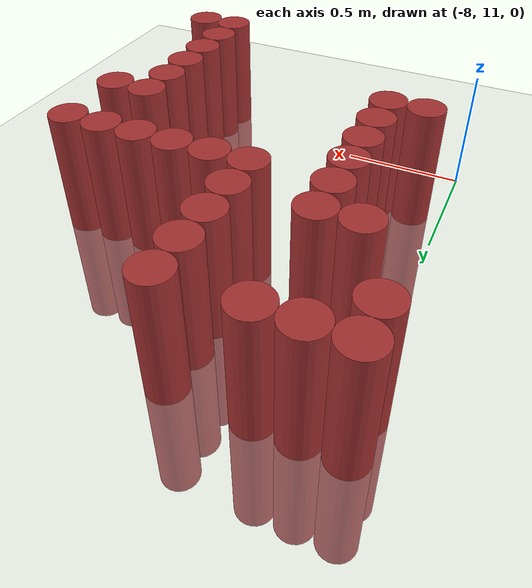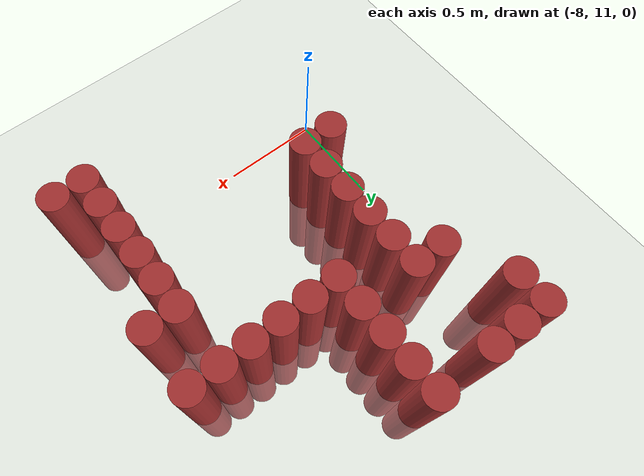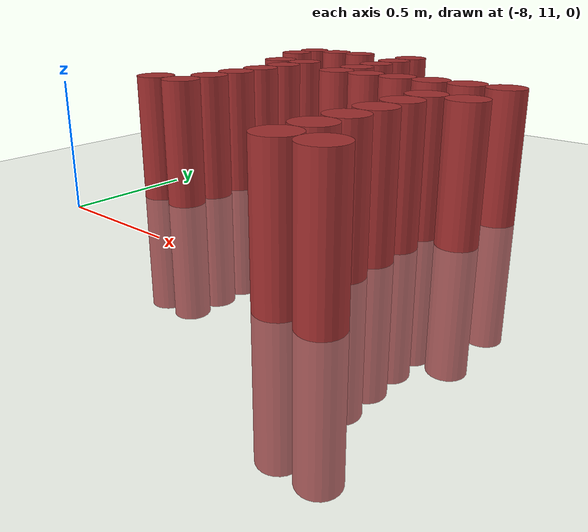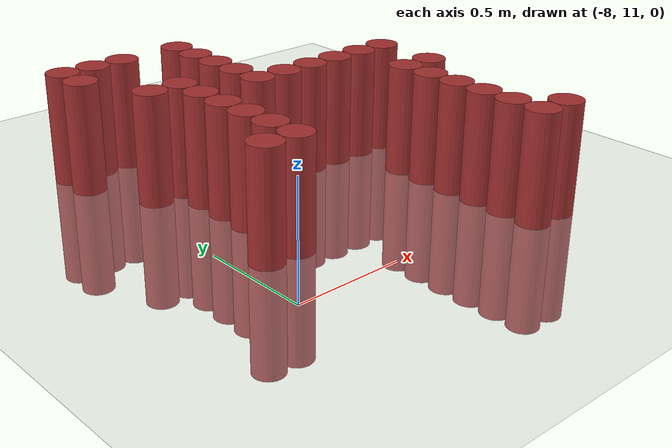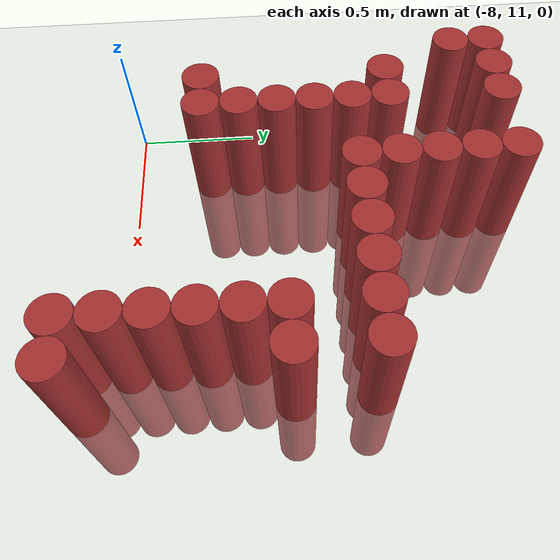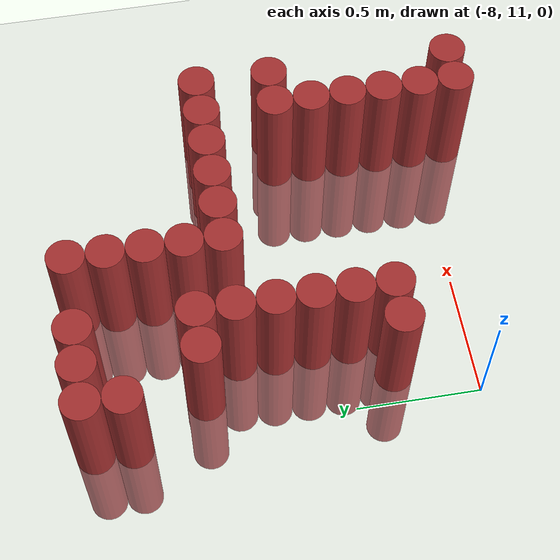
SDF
<sdf version="1.6">
 <world name="default">
  <model name="ground_plane">
   <static>1</static>
   <link name="link">
    <collision name="collision">
     <geometry><plane><normal>0 0 1</normal><size>100 100</size></plane></geometry>
     <surface><friction><ode><mu>100</mu><mu2>50</mu2></ode></friction></surface>
    </collision>
    <visual name="visual">
     <cast_shadows>0</cast_shadows>
     <geometry><plane><normal>0 0 1</normal><size>100 100</size></plane></geometry>
     <material>
      <script><uri>file://media/materials/scripts/gazebo.material</uri><name>Gazebo/Grey</name></script>
     </material>
    </visual>
   </link>
  </model>
  <model name="unit_cylinder_647">
   <static>1</static>
   <pose>-8.025 12.375 0 0 -0 0</pose>
   <link name="link">
    <inertial>
     <mass>1</mass>
     <inertia><ixx>0.145833</ixx><ixy>0</ixy><ixz>0</ixz><iyy>0.145833</iyy><iyz>0</iyz><izz>0.125</izz></inertia>
    </inertial>
    <collision name="collision">
     <geometry><cylinder><radius>0.075</radius><length>1</length></cylinder></geometry>
    </collision>
    <visual name="visual">
     <geometry><cylinder><radius>0.075</radius><length>1</length></cylinder></geometry>
     <material><ambient>0.648 0.192 0.192 1</ambient><diffuse>0.648 0.192 0.192 1</diffuse></material>
     <material>
      <script><name>Gazebo/Grey</name><uri>file://media/materials/scripts/gazebo.material</uri></script>
     </material>
    </visual>
   </link>
  </model>
  <model name="unit_cylinder_648">
   <static>1</static>
   <pose>-8.025 12.525 0 0 -0 0</pose>
   <link name="link">
    <inertial>
     <mass>1</mass>
     <inertia><ixx>0.145833</ixx><ixy>0</ixy><ixz>0</ixz><iyy>0.145833</iyy><iyz>0</iyz><izz>0.125</izz></inertia>
    </inertial>
    <collision name="collision">
     <geometry><cylinder><radius>0.075</radius><length>1</length></cylinder></geometry>
    </collision>
    <visual name="visual">
     <geometry><cylinder><radius>0.075</radius><length>1</length></cylinder></geometry>
     <material><ambient>0.648 0.192 0.192 1</ambient><diffuse>0.648 0.192 0.192 1</diffuse></material>
     <material>
      <script><name>Gazebo/Grey</name><uri>file://media/materials/scripts/gazebo.material</uri></script>
     </material>
    </visual>
   </link>
  </model>
  <model name="unit_cylinder_657">
   <static>1</static>
   <pose>-7.875 11.325 0 0 -0 0</pose>
   <link name="link">
    <inertial>
     <mass>1</mass>
     <inertia><ixx>0.145833</ixx><ixy>0</ixy><ixz>0</ixz><iyy>0.145833</iyy><iyz>0</iyz><izz>0.125</izz></inertia>
    </inertial>
    <collision name="collision">
     <geometry><cylinder><radius>0.075</radius><length>1</length></cylinder></geometry>
    </collision>
    <visual name="visual">
     <geometry><cylinder><radius>0.075</radius><length>1</length></cylinder></geometry>
     <material><ambient>0.648 0.192 0.192 1</ambient><diffuse>0.648 0.192 0.192 1</diffuse></material>
     <material>
      <script><name>Gazebo/Grey</name><uri>file://media/materials/scripts/gazebo.material</uri></script>
     </material>
    </visual>
   </link>
  </model>
  <model name="unit_cylinder_658">
   <static>1</static>
   <pose>-7.875 12.075 0 0 -0 0</pose>
   <link name="link">
    <inertial>
     <mass>1</mass>
     <inertia><ixx>0.145833</ixx><ixy>0</ixy><ixz>0</ixz><iyy>0.145833</iyy><iyz>0</iyz><izz>0.125</izz></inertia>
    </inertial>
    <collision name="collision">
     <geometry><cylinder><radius>0.075</radius><length>1</length></cylinder></geometry>
    </collision>
    <visual name="visual">
     <geometry><cylinder><radius>0.075</radius><length>1</length></cylinder></geometry>
     <material><ambient>0.648 0.192 0.192 1</ambient><diffuse>0.648 0.192 0.192 1</diffuse></material>
     <material>
      <script><name>Gazebo/Grey</name><uri>file://media/materials/scripts/gazebo.material</uri></script>
     </material>
    </visual>
   </link>
  </model>
  <model name="unit_cylinder_659">
   <static>1</static>
   <pose>-7.875 12.525 0 0 -0 0</pose>
   <link name="link">
    <inertial>
     <mass>1</mass>
     <inertia><ixx>0.145833</ixx><ixy>0</ixy><ixz>0</ixz><iyy>0.145833</iyy><iyz>0</iyz><izz>0.125</izz></inertia>
    </inertial>
    <collision name="collision">
     <geometry><cylinder><radius>0.075</radius><length>1</length></cylinder></geometry>
    </collision>
    <visual name="visual">
     <geometry><cylinder><radius>0.075</radius><length>1</length></cylinder></geometry>
     <material><ambient>0.648 0.192 0.192 1</ambient><diffuse>0.648 0.192 0.192 1</diffuse></material>
     <material>
      <script><name>Gazebo/Grey</name><uri>file://media/materials/scripts/gazebo.material</uri></script>
     </material>
    </visual>
   </link>
  </model>
  <model name="unit_cylinder_673">
   <static>1</static>
   <pose>-7.725 11.325 0 0 -0 0</pose>
   <link name="link">
    <inertial>
     <mass>1</mass>
     <inertia><ixx>0.145833</ixx><ixy>0</ixy><ixz>0</ixz><iyy>0.145833</iyy><iyz>0</iyz><izz>0.125</izz></inertia>
    </inertial>
    <collision name="collision">
     <geometry><cylinder><radius>0.075</radius><length>1</length></cylinder></geometry>
    </collision>
    <visual name="visual">
     <geometry><cylinder><radius>0.075</radius><length>1</length></cylinder></geometry>
     <material><ambient>0.648 0.192 0.192 1</ambient><diffuse>0.648 0.192 0.192 1</diffuse></material>
     <material>
      <script><name>Gazebo/Grey</name><uri>file://media/materials/scripts/gazebo.material</uri></script>
     </material>
    </visual>
   </link>
  </model>
  <model name="unit_cylinder_674">
   <static>1</static>
   <pose>-7.725 11.475 0 0 -0 0</pose>
   <link name="link">
    <inertial>
     <mass>1</mass>
     <inertia><ixx>0.145833</ixx><ixy>0</ixy><ixz>0</ixz><iyy>0.145833</iyy><iyz>0</iyz><izz>0.125</izz></inertia>
    </inertial>
    <collision name="collision">
     <geometry><cylinder><radius>0.075</radius><length>1</length></cylinder></geometry>
    </collision>
    <visual name="visual">
     <geometry><cylinder><radius>0.075</radius><length>1</length></cylinder></geometry>
     <material><ambient>0.648 0.192 0.192 1</ambient><diffuse>0.648 0.192 0.192 1</diffuse></material>
     <material>
      <script><name>Gazebo/Grey</name><uri>file://media/materials/scripts/gazebo.material</uri></script>
     </material>
    </visual>
   </link>
  </model>
  <model name="unit_cylinder_675">
   <static>1</static>
   <pose>-7.725 11.625 0 0 -0 0</pose>
   <link name="link">
    <inertial>
     <mass>1</mass>
     <inertia><ixx>0.145833</ixx><ixy>0</ixy><ixz>0</ixz><iyy>0.145833</iyy><iyz>0</iyz><izz>0.125</izz></inertia>
    </inertial>
    <collision name="collision">
     <geometry><cylinder><radius>0.075</radius><length>1</length></cylinder></geometry>
    </collision>
    <visual name="visual">
     <geometry><cylinder><radius>0.075</radius><length>1</length></cylinder></geometry>
     <material><ambient>0.648 0.192 0.192 1</ambient><diffuse>0.648 0.192 0.192 1</diffuse></material>
     <material>
      <script><name>Gazebo/Grey</name><uri>file://media/materials/scripts/gazebo.material</uri></script>
     </material>
    </visual>
   </link>
  </model>
  <model name="unit_cylinder_676">
   <static>1</static>
   <pose>-7.725 11.775 0 0 -0 0</pose>
   <link name="link">
    <inertial>
     <mass>1</mass>
     <inertia><ixx>0.145833</ixx><ixy>0</ixy><ixz>0</ixz><iyy>0.145833</iyy><iyz>0</iyz><izz>0.125</izz></inertia>
    </inertial>
    <collision name="collision">
     <geometry><cylinder><radius>0.075</radius><length>1</length></cylinder></geometry>
    </collision>
    <visual name="visual">
     <geometry><cylinder><radius>0.075</radius><length>1</length></cylinder></geometry>
     <material><ambient>0.648 0.192 0.192 1</ambient><diffuse>0.648 0.192 0.192 1</diffuse></material>
     <material>
      <script><name>Gazebo/Grey</name><uri>file://media/materials/scripts/gazebo.material</uri></script>
     </material>
    </visual>
   </link>
  </model>
  <model name="unit_cylinder_677">
   <static>1</static>
   <pose>-7.725 11.925 0 0 -0 0</pose>
   <link name="link">
    <inertial>
     <mass>1</mass>
     <inertia><ixx>0.145833</ixx><ixy>0</ixy><ixz>0</ixz><iyy>0.145833</iyy><iyz>0</iyz><izz>0.125</izz></inertia>
    </inertial>
    <collision name="collision">
     <geometry><cylinder><radius>0.075</radius><length>1</length></cylinder></geometry>
    </collision>
    <visual name="visual">
     <geometry><cylinder><radius>0.075</radius><length>1</length></cylinder></geometry>
     <material><ambient>0.648 0.192 0.192 1</ambient><diffuse>0.648 0.192 0.192 1</diffuse></material>
     <material>
      <script><name>Gazebo/Grey</name><uri>file://media/materials/scripts/gazebo.material</uri></script>
     </material>
    </visual>
   </link>
  </model>
  <model name="unit_cylinder_678">
   <static>1</static>
   <pose>-7.725 12.075 0 0 -0 0</pose>
   <link name="link">
    <inertial>
     <mass>1</mass>
     <inertia><ixx>0.145833</ixx><ixy>0</ixy><ixz>0</ixz><iyy>0.145833</iyy><iyz>0</iyz><izz>0.125</izz></inertia>
    </inertial>
    <collision name="collision">
     <geometry><cylinder><radius>0.075</radius><length>1</length></cylinder></geometry>
    </collision>
    <visual name="visual">
     <geometry><cylinder><radius>0.075</radius><length>1</length></cylinder></geometry>
     <material><ambient>0.648 0.192 0.192 1</ambient><diffuse>0.648 0.192 0.192 1</diffuse></material>
     <material>
      <script><name>Gazebo/Grey</name><uri>file://media/materials/scripts/gazebo.material</uri></script>
     </material>
    </visual>
   </link>
  </model>
  <model name="unit_cylinder_679">
   <static>1</static>
   <pose>-7.725 12.525 0 0 -0 0</pose>
   <link name="link">
    <inertial>
     <mass>1</mass>
     <inertia><ixx>0.145833</ixx><ixy>0</ixy><ixz>0</ixz><iyy>0.145833</iyy><iyz>0</iyz><izz>0.125</izz></inertia>
    </inertial>
    <collision name="collision">
     <geometry><cylinder><radius>0.075</radius><length>1</length></cylinder></geometry>
    </collision>
    <visual name="visual">
     <geometry><cylinder><radius>0.075</radius><length>1</length></cylinder></geometry>
     <material><ambient>0.648 0.192 0.192 1</ambient><diffuse>0.648 0.192 0.192 1</diffuse></material>
     <material>
      <script><name>Gazebo/Grey</name><uri>file://media/materials/scripts/gazebo.material</uri></script>
     </material>
    </visual>
   </link>
  </model>
  <model name="unit_cylinder_728">
   <static>1</static>
   <pose>-7.425 11.925 0 0 -0 0</pose>
   <link name="link">
    <inertial>
     <mass>1</mass>
     <inertia><ixx>0.145833</ixx><ixy>0</ixy><ixz>0</ixz><iyy>0.145833</iyy><iyz>0</iyz><izz>0.125</izz></inertia>
    </inertial>
    <collision name="collision">
     <geometry><cylinder><radius>0.075</radius><length>1</length></cylinder></geometry>
    </collision>
    <visual name="visual">
     <geometry><cylinder><radius>0.075</radius><length>1</length></cylinder></geometry>
     <material><ambient>0.648 0.192 0.192 1</ambient><diffuse>0.648 0.192 0.192 1</diffuse></material>
     <material>
      <script><name>Gazebo/Grey</name><uri>file://media/materials/scripts/gazebo.material</uri></script>
     </material>
    </visual>
   </link>
  </model>
  <model name="unit_cylinder_729">
   <static>1</static>
   <pose>-7.425 12.075 0 0 -0 0</pose>
   <link name="link">
    <inertial>
     <mass>1</mass>
     <inertia><ixx>0.145833</ixx><ixy>0</ixy><ixz>0</ixz><iyy>0.145833</iyy><iyz>0</iyz><izz>0.125</izz></inertia>
    </inertial>
    <collision name="collision">
     <geometry><cylinder><radius>0.075</radius><length>1</length></cylinder></geometry>
    </collision>
    <visual name="visual">
     <geometry><cylinder><radius>0.075</radius><length>1</length></cylinder></geometry>
     <material><ambient>0.648 0.192 0.192 1</ambient><diffuse>0.648 0.192 0.192 1</diffuse></material>
     <material>
      <script><name>Gazebo/Grey</name><uri>file://media/materials/scripts/gazebo.material</uri></script>
     </material>
    </visual>
   </link>
  </model>
  <model name="unit_cylinder_730">
   <static>1</static>
   <pose>-7.425 12.225 0 0 -0 0</pose>
   <link name="link">
    <inertial>
     <mass>1</mass>
     <inertia><ixx>0.145833</ixx><ixy>0</ixy><ixz>0</ixz><iyy>0.145833</iyy><iyz>0</iyz><izz>0.125</izz></inertia>
    </inertial>
    <collision name="collision">
     <geometry><cylinder><radius>0.075</radius><length>1</length></cylinder></geometry>
    </collision>
    <visual name="visual">
     <geometry><cylinder><radius>0.075</radius><length>1</length></cylinder></geometry>
     <material><ambient>0.648 0.192 0.192 1</ambient><diffuse>0.648 0.192 0.192 1</diffuse></material>
     <material>
      <script><name>Gazebo/Grey</name><uri>file://media/materials/scripts/gazebo.material</uri></script>
     </material>
    </visual>
   </link>
  </model>
  <model name="unit_cylinder_731">
   <static>1</static>
   <pose>-7.425 12.375 0 0 -0 0</pose>
   <link name="link">
    <inertial>
     <mass>1</mass>
     <inertia><ixx>0.145833</ixx><ixy>0</ixy><ixz>0</ixz><iyy>0.145833</iyy><iyz>0</iyz><izz>0.125</izz></inertia>
    </inertial>
    <collision name="collision">
     <geometry><cylinder><radius>0.075</radius><length>1</length></cylinder></geometry>
    </collision>
    <visual name="visual">
     <geometry><cylinder><radius>0.075</radius><length>1</length></cylinder></geometry>
     <material><ambient>0.648 0.192 0.192 1</ambient><diffuse>0.648 0.192 0.192 1</diffuse></material>
     <material>
      <script><name>Gazebo/Grey</name><uri>file://media/materials/scripts/gazebo.material</uri></script>
     </material>
    </visual>
   </link>
  </model>
  <model name="unit_cylinder_732">
   <static>1</static>
   <pose>-7.425 12.525 0 0 -0 0</pose>
   <link name="link">
    <inertial>
     <mass>1</mass>
     <inertia><ixx>0.145833</ixx><ixy>0</ixy><ixz>0</ixz><iyy>0.145833</iyy><iyz>0</iyz><izz>0.125</izz></inertia>
    </inertial>
    <collision name="collision">
     <geometry><cylinder><radius>0.075</radius><length>1</length></cylinder></geometry>
    </collision>
    <visual name="visual">
     <geometry><cylinder><radius>0.075</radius><length>1</length></cylinder></geometry>
     <material><ambient>0.648 0.192 0.192 1</ambient><diffuse>0.648 0.192 0.192 1</diffuse></material>
     <material>
      <script><name>Gazebo/Grey</name><uri>file://media/materials/scripts/gazebo.material</uri></script>
     </material>
    </visual>
   </link>
  </model>
  <model name="unit_cylinder_753">
   <static>1</static>
   <pose>-7.275 11.925 0 0 -0 0</pose>
   <link name="link">
    <inertial>
     <mass>1</mass>
     <inertia><ixx>0.145833</ixx><ixy>0</ixy><ixz>0</ixz><iyy>0.145833</iyy><iyz>0</iyz><izz>0.125</izz></inertia>
    </inertial>
    <collision name="collision">
     <geometry><cylinder><radius>0.075</radius><length>1</length></cylinder></geometry>
    </collision>
    <visual name="visual">
     <geometry><cylinder><radius>0.075</radius><length>1</length></cylinder></geometry>
     <material><ambient>0.648 0.192 0.192 1</ambient><diffuse>0.648 0.192 0.192 1</diffuse></material>
     <material>
      <script><name>Gazebo/Grey</name><uri>file://media/materials/scripts/gazebo.material</uri></script>
     </material>
    </visual>
   </link>
  </model>
  <model name="unit_cylinder_769">
   <static>1</static>
   <pose>-7.125 11.925 0 0 -0 0</pose>
   <link name="link">
    <inertial>
     <mass>1</mass>
     <inertia><ixx>0.145833</ixx><ixy>0</ixy><ixz>0</ixz><iyy>0.145833</iyy><iyz>0</iyz><izz>0.125</izz></inertia>
    </inertial>
    <collision name="collision">
     <geometry><cylinder><radius>0.075</radius><length>1</length></cylinder></geometry>
    </collision>
    <visual name="visual">
     <geometry><cylinder><radius>0.075</radius><length>1</length></cylinder></geometry>
     <material><ambient>0.648 0.192 0.192 1</ambient><diffuse>0.648 0.192 0.192 1</diffuse></material>
     <material>
      <script><name>Gazebo/Grey</name><uri>file://media/materials/scripts/gazebo.material</uri></script>
     </material>
    </visual>
   </link>
  </model>
  <model name="unit_cylinder_783">
   <static>1</static>
   <pose>-6.975 11.925 0 0 -0 0</pose>
   <link name="link">
    <inertial>
     <mass>1</mass>
     <inertia><ixx>0.145833</ixx><ixy>0</ixy><ixz>0</ixz><iyy>0.145833</iyy><iyz>0</iyz><izz>0.125</izz></inertia>
    </inertial>
    <collision name="collision">
     <geometry><cylinder><radius>0.075</radius><length>1</length></cylinder></geometry>
    </collision>
    <visual name="visual">
     <geometry><cylinder><radius>0.075</radius><length>1</length></cylinder></geometry>
     <material><ambient>0.648 0.192 0.192 1</ambient><diffuse>0.648 0.192 0.192 1</diffuse></material>
     <material>
      <script><name>Gazebo/Grey</name><uri>file://media/materials/scripts/gazebo.material</uri></script>
     </material>
    </visual>
   </link>
  </model>
  <model name="unit_cylinder_797">
   <static>1</static>
   <pose>-6.825 10.875 0 0 -0 0</pose>
   <link name="link">
    <inertial>
     <mass>1</mass>
     <inertia><ixx>0.145833</ixx><ixy>0</ixy><ixz>0</ixz><iyy>0.145833</iyy><iyz>0</iyz><izz>0.125</izz></inertia>
    </inertial>
    <collision name="collision">
     <geometry><cylinder><radius>0.075</radius><length>1</length></cylinder></geometry>
    </collision>
    <visual name="visual">
     <geometry><cylinder><radius>0.075</radius><length>1</length></cylinder></geometry>
     <material><ambient>0.648 0.192 0.192 1</ambient><diffuse>0.648 0.192 0.192 1</diffuse></material>
     <material>
      <script><name>Gazebo/Grey</name><uri>file://media/materials/scripts/gazebo.material</uri></script>
     </material>
    </visual>
   </link>
  </model>
  <model name="unit_cylinder_798">
   <static>1</static>
   <pose>-6.825 11.025 0 0 -0 0</pose>
   <link name="link">
    <inertial>
     <mass>1</mass>
     <inertia><ixx>0.145833</ixx><ixy>0</ixy><ixz>0</ixz><iyy>0.145833</iyy><iyz>0</iyz><izz>0.125</izz></inertia>
    </inertial>
    <collision name="collision">
     <geometry><cylinder><radius>0.075</radius><length>1</length></cylinder></geometry>
    </collision>
    <visual name="visual">
     <geometry><cylinder><radius>0.075</radius><length>1</length></cylinder></geometry>
     <material><ambient>0.648 0.192 0.192 1</ambient><diffuse>0.648 0.192 0.192 1</diffuse></material>
     <material>
      <script><name>Gazebo/Grey</name><uri>file://media/materials/scripts/gazebo.material</uri></script>
     </material>
    </visual>
   </link>
  </model>
  <model name="unit_cylinder_799">
   <static>1</static>
   <pose>-6.825 11.175 0 0 -0 0</pose>
   <link name="link">
    <inertial>
     <mass>1</mass>
     <inertia><ixx>0.145833</ixx><ixy>0</ixy><ixz>0</ixz><iyy>0.145833</iyy><iyz>0</iyz><izz>0.125</izz></inertia>
    </inertial>
    <collision name="collision">
     <geometry><cylinder><radius>0.075</radius><length>1</length></cylinder></geometry>
    </collision>
    <visual name="visual">
     <geometry><cylinder><radius>0.075</radius><length>1</length></cylinder></geometry>
     <material><ambient>0.648 0.192 0.192 1</ambient><diffuse>0.648 0.192 0.192 1</diffuse></material>
     <material>
      <script><name>Gazebo/Grey</name><uri>file://media/materials/scripts/gazebo.material</uri></script>
     </material>
    </visual>
   </link>
  </model>
  <model name="unit_cylinder_800">
   <static>1</static>
   <pose>-6.825 11.325 0 0 -0 0</pose>
   <link name="link">
    <inertial>
     <mass>1</mass>
     <inertia><ixx>0.145833</ixx><ixy>0</ixy><ixz>0</ixz><iyy>0.145833</iyy><iyz>0</iyz><izz>0.125</izz></inertia>
    </inertial>
    <collision name="collision">
     <geometry><cylinder><radius>0.075</radius><length>1</length></cylinder></geometry>
    </collision>
    <visual name="visual">
     <geometry><cylinder><radius>0.075</radius><length>1</length></cylinder></geometry>
     <material><ambient>0.648 0.192 0.192 1</ambient><diffuse>0.648 0.192 0.192 1</diffuse></material>
     <material>
      <script><name>Gazebo/Grey</name><uri>file://media/materials/scripts/gazebo.material</uri></script>
     </material>
    </visual>
   </link>
  </model>
  <model name="unit_cylinder_801">
   <static>1</static>
   <pose>-6.825 11.475 0 0 -0 0</pose>
   <link name="link">
    <inertial>
     <mass>1</mass>
     <inertia><ixx>0.145833</ixx><ixy>0</ixy><ixz>0</ixz><iyy>0.145833</iyy><iyz>0</iyz><izz>0.125</izz></inertia>
    </inertial>
    <collision name="collision">
     <geometry><cylinder><radius>0.075</radius><length>1</length></cylinder></geometry>
    </collision>
    <visual name="visual">
     <geometry><cylinder><radius>0.075</radius><length>1</length></cylinder></geometry>
     <material><ambient>0.648 0.192 0.192 1</ambient><diffuse>0.648 0.192 0.192 1</diffuse></material>
     <material>
      <script><name>Gazebo/Grey</name><uri>file://media/materials/scripts/gazebo.material</uri></script>
     </material>
    </visual>
   </link>
  </model>
  <model name="unit_cylinder_802">
   <static>1</static>
   <pose>-6.825 11.625 0 0 -0 0</pose>
   <link name="link">
    <inertial>
     <mass>1</mass>
     <inertia><ixx>0.145833</ixx><ixy>0</ixy><ixz>0</ixz><iyy>0.145833</iyy><iyz>0</iyz><izz>0.125</izz></inertia>
    </inertial>
    <collision name="collision">
     <geometry><cylinder><radius>0.075</radius><length>1</length></cylinder></geometry>
    </collision>
    <visual name="visual">
     <geometry><cylinder><radius>0.075</radius><length>1</length></cylinder></geometry>
     <material><ambient>0.648 0.192 0.192 1</ambient><diffuse>0.648 0.192 0.192 1</diffuse></material>
     <material>
      <script><name>Gazebo/Grey</name><uri>file://media/materials/scripts/gazebo.material</uri></script>
     </material>
    </visual>
   </link>
  </model>
  <model name="unit_cylinder_803">
   <static>1</static>
   <pose>-6.825 11.925 0 0 -0 0</pose>
   <link name="link">
    <inertial>
     <mass>1</mass>
     <inertia><ixx>0.145833</ixx><ixy>0</ixy><ixz>0</ixz><iyy>0.145833</iyy><iyz>0</iyz><izz>0.125</izz></inertia>
    </inertial>
    <collision name="collision">
     <geometry><cylinder><radius>0.075</radius><length>1</length></cylinder></geometry>
    </collision>
    <visual name="visual">
     <geometry><cylinder><radius>0.075</radius><length>1</length></cylinder></geometry>
     <material><ambient>0.648 0.192 0.192 1</ambient><diffuse>0.648 0.192 0.192 1</diffuse></material>
     <material>
      <script><name>Gazebo/Grey</name><uri>file://media/materials/scripts/gazebo.material</uri></script>
     </material>
    </visual>
   </link>
  </model>
  <model name="unit_cylinder_819">
   <static>1</static>
   <pose>-6.675 10.875 0 0 -0 0</pose>
   <link name="link">
    <inertial>
     <mass>1</mass>
     <inertia><ixx>0.145833</ixx><ixy>0</ixy><ixz>0</ixz><iyy>0.145833</iyy><iyz>0</iyz><izz>0.125</izz></inertia>
    </inertial>
    <collision name="collision">
     <geometry><cylinder><radius>0.075</radius><length>1</length></cylinder></geometry>
    </collision>
    <visual name="visual">
     <geometry><cylinder><radius>0.075</radius><length>1</length></cylinder></geometry>
     <material><ambient>0.648 0.192 0.192 1</ambient><diffuse>0.648 0.192 0.192 1</diffuse></material>
     <material>
      <script><name>Gazebo/Grey</name><uri>file://media/materials/scripts/gazebo.material</uri></script>
     </material>
    </visual>
   </link>
  </model>
  <model name="unit_cylinder_820">
   <static>1</static>
   <pose>-6.675 11.625 0 0 -0 0</pose>
   <link name="link">
    <inertial>
     <mass>1</mass>
     <inertia><ixx>0.145833</ixx><ixy>0</ixy><ixz>0</ixz><iyy>0.145833</iyy><iyz>0</iyz><izz>0.125</izz></inertia>
    </inertial>
    <collision name="collision">
     <geometry><cylinder><radius>0.075</radius><length>1</length></cylinder></geometry>
    </collision>
    <visual name="visual">
     <geometry><cylinder><radius>0.075</radius><length>1</length></cylinder></geometry>
     <material><ambient>0.648 0.192 0.192 1</ambient><diffuse>0.648 0.192 0.192 1</diffuse></material>
     <material>
      <script><name>Gazebo/Grey</name><uri>file://media/materials/scripts/gazebo.material</uri></script>
     </material>
    </visual>
   </link>
  </model>
  <model name="unit_cylinder_821">
   <static>1</static>
   <pose>-6.675 11.925 0 0 -0 0</pose>
   <link name="link">
    <inertial>
     <mass>1</mass>
     <inertia><ixx>0.145833</ixx><ixy>0</ixy><ixz>0</ixz><iyy>0.145833</iyy><iyz>0</iyz><izz>0.125</izz></inertia>
    </inertial>
    <collision name="collision">
     <geometry><cylinder><radius>0.075</radius><length>1</length></cylinder></geometry>
    </collision>
    <visual name="visual">
     <geometry><cylinder><radius>0.075</radius><length>1</length></cylinder></geometry>
     <material><ambient>0.648 0.192 0.192 1</ambient><diffuse>0.648 0.192 0.192 1</diffuse></material>
     <material>
      <script><name>Gazebo/Grey</name><uri>file://media/materials/scripts/gazebo.material</uri></script>
     </material>
    </visual>
   </link>
  </model>
 </world>
</sdf>
